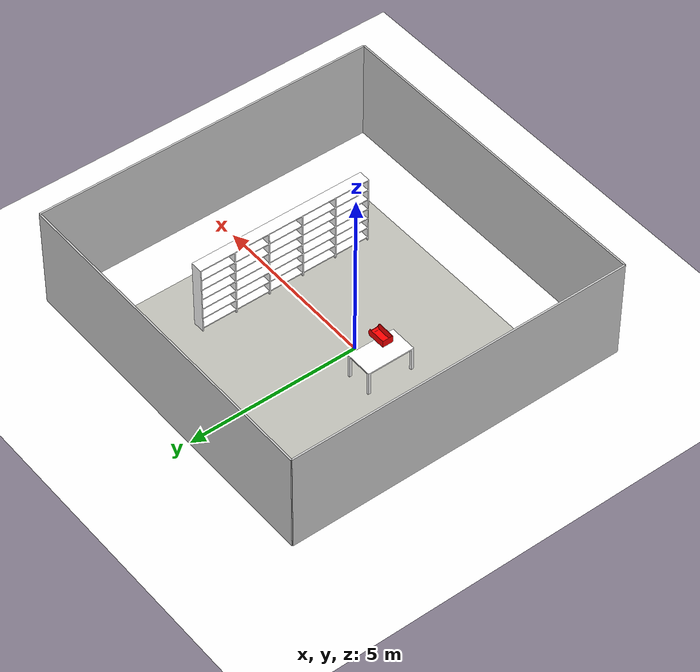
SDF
<?xml version="1.0" ?>
<sdf version="1.8">
  <world name="erc_world">

    <!-- PHYSICS                                     -->
    <physics name="default" type="ode">
      <max_step_size>0.002</max_step_size>
      <real_time_factor>1.0</real_time_factor>
    </physics>

    <!-- PLUGINS                                     -->
    <plugin filename="gz-sim-physics-system" name="gz::sim::systems::Physics"/>
    <plugin filename="gz-sim-user-commands-system" name="gz::sim::systems::UserCommands"/>
    <plugin filename="gz-sim-scene-broadcaster-system" name="gz::sim::systems::SceneBroadcaster"/>
    <plugin filename="gz-sim-sensors-system" name="gz::sim::systems::Sensors">
      <render_engine>ogre2</render_engine>
    </plugin>
    <plugin filename="gz-sim-contact-system" name="gz::sim::systems::Contact"/>

    <!-- Needed for IMU specifically -->
    <plugin filename="gz-sim-imu-system" name="gz::sim::systems::Imu"/>

    <!-- GROUND PLANE with sponsor logo               -->
    <model name="ground_plane">
      <static>true</static>
      <pose>1.0 0 0 0 0 0</pose>
      <link name="link">
        <collision name="collision">
          <geometry>
            <plane><normal>0 0 1</normal><size>10 10</size></plane>
          </geometry>
        </collision>
        <visual name="visual">
          <geometry>
            <plane><normal>0 0 1</normal><size>10 10</size></plane>
          </geometry>
          <material>
            <ambient>1 1 1 1</ambient>
            <diffuse>1 1 1 1</diffuse>
            <pbr>
              <metal>
                <albedo_map>model://erc_description/materials/textures/arena_floor.png</albedo_map>
              </metal>
            </pbr>
          </material>
        </visual>
      </link>
    </model>

    <!-- ARENA BOUNDARIES                             -->
    <!-- Arena floor marking (slightly raised) -->
    <model name="arena_boundary">
      <static>true</static>
      <pose>1.0 0.0 0.001 0 0 0</pose>
      <link name="link">
        <visual name="floor_marking">
          <geometry>
            <plane><normal>0 0 1</normal><size>7.0 7.0</size></plane>
          </geometry>
          <material>
            <ambient>0.75 0.75 0.72 1</ambient>
            <diffuse>0.75 0.75 0.72 1</diffuse>
          </material>
        </visual>
      </link>
    </model>

    <!-- OUTER WALLS                                  -->
    <model name="wall_north">
      <static>true</static>
      <pose>1.0 5 1.5 0 0 0</pose>
      <link name="link">
        <collision name="collision">
          <geometry>
            <box><size>10 0.05 3</size></box>
          </geometry>
        </collision>
        <visual name="visual">
          <geometry>
            <box><size>10 0.05 3</size></box>
          </geometry>
          <material>
            <ambient>0.8 0.8 0.8 1</ambient>
            <diffuse>0.8 0.8 0.8 1</diffuse>
          </material>
        </visual>
      </link>
    </model>

    <model name="wall_south">
      <static>true</static>
      <pose>1.0 -5 1.5 0 0 0</pose>
      <link name="link">
        <collision name="collision">
          <geometry>
            <box><size>10 0.05 3</size></box>
          </geometry>
        </collision>
        <visual name="visual">
          <geometry>
            <box><size>10 0.05 3</size></box>
          </geometry>
          <material>
            <ambient>0.8 0.8 0.8 1</ambient>
            <diffuse>0.8 0.8 0.8 1</diffuse>
          </material>
        </visual>
      </link>
    </model>

    <model name="wall_east">
      <static>true</static>
      <pose>6.0 0 1.5 0 0 0</pose>
      <link name="link">
        <collision name="collision">
          <geometry>
            <box><size>0.05 10 3</size></box>
          </geometry>
        </collision>
        <visual name="visual">
          <geometry>
            <box><size>0.05 10 3</size></box>
          </geometry>
          <material>
            <ambient>0.8 0.8 0.8 1</ambient>
            <diffuse>0.8 0.8 0.8 1</diffuse>
          </material>
        </visual>
      </link>
    </model>

    <model name="wall_west">
      <static>true</static>
      <pose>-4.0 0 1.5 0 0 0</pose>
      <link name="link">
        <collision name="collision">
          <geometry>
            <box><size>0.05 10 3</size></box>
          </geometry>
        </collision>
        <visual name="visual">
          <geometry>
            <box><size>0.05 10 3</size></box>
          </geometry>
          <material>
            <ambient>0.8 0.8 0.8 1</ambient>
            <diffuse>0.8 0.8 0.8 1</diffuse>
          </material>
        </visual>
      </link>
    </model>

    <!-- START ZONE (Location A)                    -->
    <model name="start_zone">
      <static>true</static>
      <pose>0 0 0.002 0 0 0</pose>
      <link name="link">
        <visual name="visual">
          <geometry>
            <plane><normal>0 0 1</normal><size>0.8 0.8</size></plane>
          </geometry>
          <material>
            <ambient>0.1 0.4 0.1 1</ambient>
            <diffuse>0.1 0.4 0.1 1</diffuse>
          </material>
        </visual>
      </link>
    </model>

    <!-- TABLE -->
      <include>
        <uri>model://erc_description/models/table/sdf/erc_table.sdf</uri>
        <name>erc_table</name>
        <pose>-1 0 0.7 1.5708 0 -1.5708</pose>
      </include>

    <!-- SHELF -->
      <include>
        <uri>model://erc_description/models/shelf/sdf/erc_shelf.sdf</uri>
        <name>erc_shelf</name>
        <pose>3 0 1.1 1.5708 0 -1.5708</pose>
      </include>

    <!-- COLLECTION BIN -->
      <include>
        <uri>model://erc_description/models/collection_bin/sdf/erc_collection_bin.sdf</uri>
        <name>erc_collection_bin</name>
        <pose>-1 0 1.3 1.5708 0 -1.5708</pose>
      </include>

    <!-- SCENE                                        -->
    <scene>
      <ambient>0.7 0.7 0.7 1</ambient>
      <background>0.8 0.8 0.8 1</background>
      <shadows>false</shadows>
    </scene>

    <!-- LIGHTS                                       -->
    <!-- Light from front -->
    <light name="light_front" type="directional">
      <pose>0 -10 5 0 0.5 0</pose>
      <diffuse>0.5 0.5 0.5 1</diffuse>
      <specular>0.1 0.1 0.1 1</specular>
      <direction>0 1 -0.5</direction>
      <cast_shadows>false</cast_shadows>
    </light>

    <!-- Light from back -->
    <light name="light_back" type="directional">
      <pose>0 10 5 0 -0.5 0</pose>
      <diffuse>0.5 0.5 0.5 1</diffuse>
      <specular>0.1 0.1 0.1 1</specular>
      <direction>0 -1 -0.5</direction>
      <cast_shadows>false</cast_shadows>
    </light>

    <!-- Light from left -->
    <light name="light_left" type="directional">
      <pose>-10 0 5 0 0 0.5</pose>
      <diffuse>0.5 0.5 0.5 1</diffuse>
      <specular>0.1 0.1 0.1 1</specular>
      <direction>1 0 -0.5</direction>
      <cast_shadows>false</cast_shadows>
    </light>

    <!-- Light from right -->
    <light name="light_right" type="directional">
      <pose>10 0 5 0 0 -0.5</pose>
      <diffuse>0.5 0.5 0.5 1</diffuse>
      <specular>0.1 0.1 0.1 1</specular>
      <direction>-1 0 -0.5</direction>
      <cast_shadows>false</cast_shadows>
    </light>

  </world>
</sdf>

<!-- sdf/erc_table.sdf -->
<sdf version="1.8">
  <model name="erc_table">
    <static>true</static>
    <link name="table_base_link">

      <visual name="base_link_table_visual">
        <pose>0 0 0 0 0 0</pose>
        <geometry>
          <mesh>
            <uri>model:///erc_description/models/table/meshes/erc_base_table.STL</uri>

          </mesh>
        </geometry>
        <material>
          <ambient>1 1 1 1</ambient>
          <diffuse>1 1 1 1</diffuse>
        </material>
      </visual>

      <collision name="base_link_table_collision">
        <pose>0 0 0 0 0 0</pose>
        <geometry>
          <mesh>
            <uri>model:///erc_description/models/table/meshes/erc_base_table.STL</uri>

          </mesh>
        </geometry>
      </collision>
    </link>
  </model>
</sdf>

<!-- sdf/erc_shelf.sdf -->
<sdf version="1.8">
  <model name="erc_shelf">
    <static>true</static>
    <link name="shelf_base_link">

      <visual name="base_link_shelf_visual">
        <pose>0 0 0 0 0 0</pose>
        <geometry>
          <mesh>
            <uri>model://erc_description/models/shelf/meshes/erc_base_shelf.STL</uri>

          </mesh>
        </geometry>
        <material>
          <ambient>1 1 1 1</ambient>
          <diffuse>1 1 1 1</diffuse>
        </material>
      </visual>

      <collision name="base_link_shelf_collision">
        <pose>0 0 0 0 0 0</pose>
        <geometry>
          <mesh>
            <uri>model://erc_description/models/shelf/meshes/erc_base_shelf.STL</uri>

          </mesh>
        </geometry>
      </collision>

    </link>
  </model>
</sdf>

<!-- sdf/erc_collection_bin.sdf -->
<sdf version="1.8">
  <model name="erc_colleciton_bin">
    <link name="collection_bin_base_link">

      <inertial>
        <pose>-0.000869450515234303 -0.0349219950638846 -2.95363168814333E-17 0 0 0</pose>
        <mass>4.70313898335195</mass>
        <inertia>
          <ixx>0.0896407437951023</ixx>
          <ixy>0.00627075393219412</ixy>
          <ixz>-5.70546165916065E-17</ixz>
          <iyy>0.223231929617035</iyy>
          <iyz>1.25985954159326E-17</iyz>
          <izz>0.175200579933907</izz>
        </inertia>
      </inertial>

      <visual name="base_link_collection_bin_visual">
        <pose>0 0 0 0 0 0</pose>
        <geometry>
          <mesh>
            <uri>model://erc_description/models/collection_bin/meshes/erc_base_collection_bin.STL</uri>

          </mesh>
        </geometry>
        <material>
          <ambient>1 0 0 1</ambient>
          <diffuse>1 0 0 1</diffuse>
        </material>
      </visual>

      <collision name="base_link_collection_bin_collision">
        <pose>0 0 0 0 0 0</pose>
        <geometry>
          <mesh>
            <uri>model://erc_description/models/collection_bin/meshes/erc_base_collection_bin.STL</uri>

          </mesh>
        </geometry>
      </collision>

      <sensor name="bin_contact_sensor" type="contact">
        <update_rate>10</update_rate>
        <always_on>true</always_on>
        <contact>
          <collision>base_link_collection_bin_collision</collision>
        </contact>
      </sensor>

    </link>
  </model>
</sdf>
